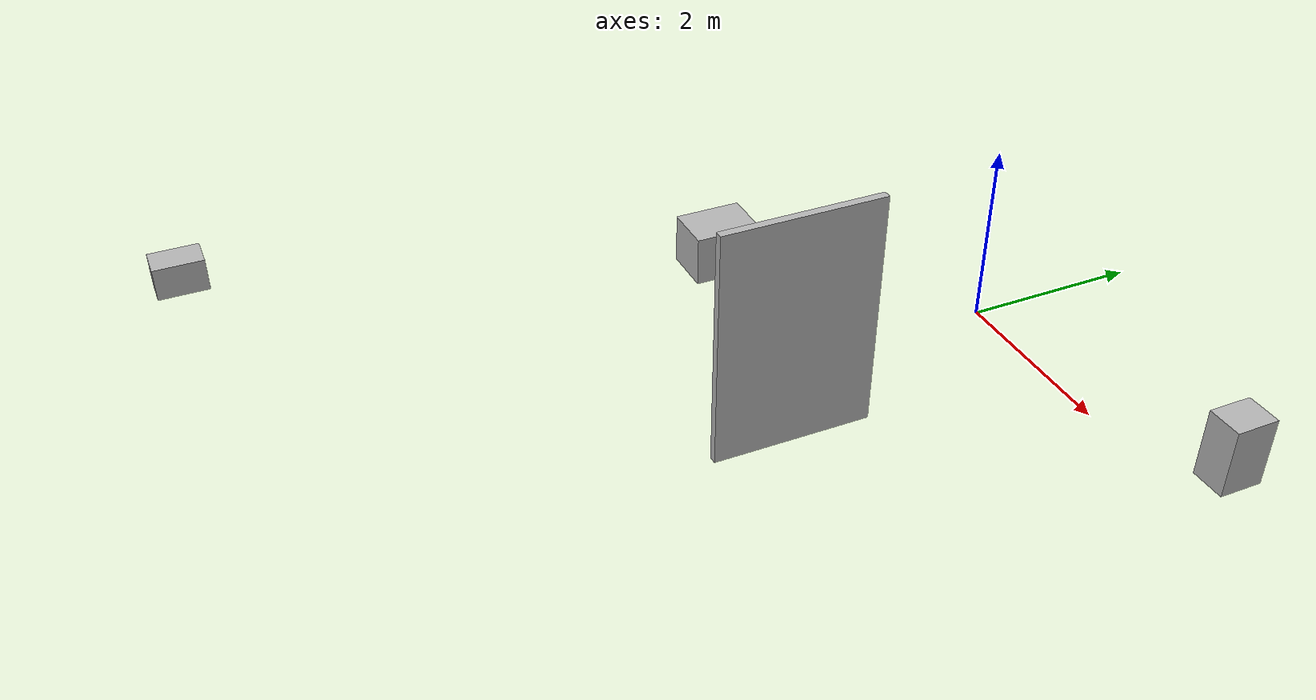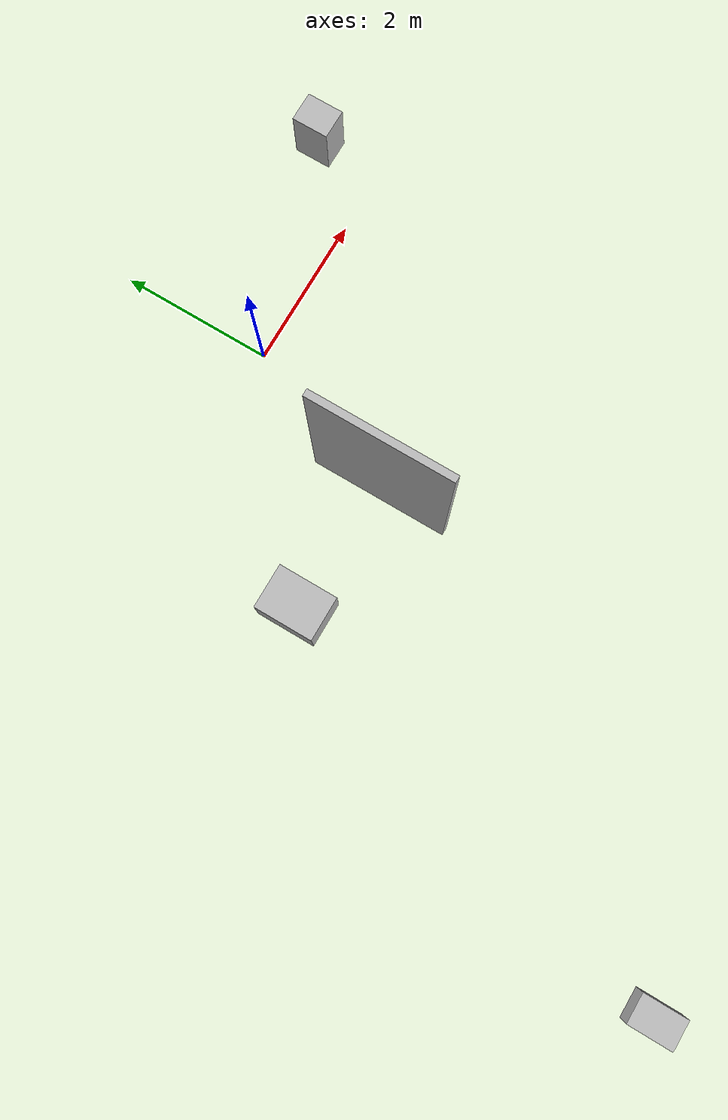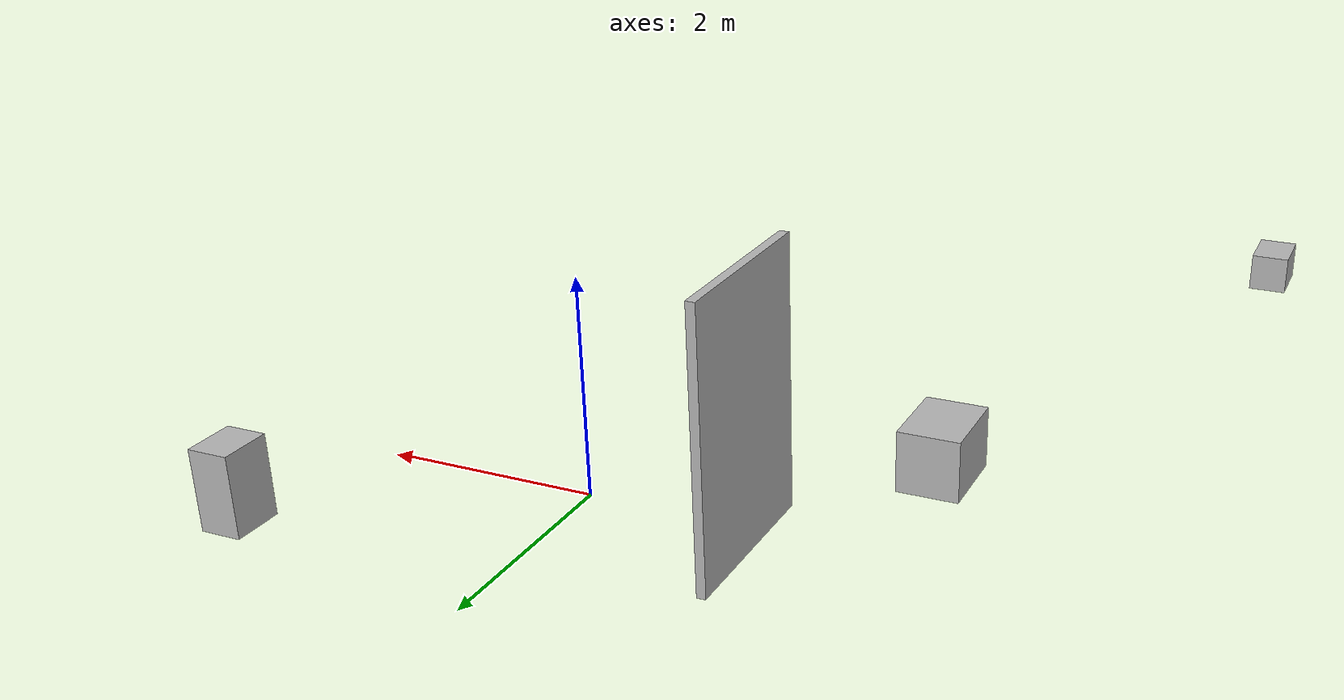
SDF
<sdf version="1.7"> <!-- ✅ 버전 업그레이드 -->
  <world name="animated_box_elements">

    <!-- ✅ 모든 환경 요소 삭제: light, gui 등 -->

    <!-- ✅ 움직이는 박스 모델들만 남김 -->

    <model name="box1">
      <pose>3 1 0 0 0 0</pose>
      <link name="link">
        <collision name="collision">
          <geometry>
            <box>
              <size>0.4 0.5 0.8</size>
            </box>
          </geometry>
        </collision>

        <visual name="visual">
          <geometry>
            <box>
              <size>0.4 0.5 0.8</size>
            </box>
          </geometry>
        </visual>
      </link>
      <plugin name="push_animate_1" filename="libanimated_box_1.so"/>
    </model>

    <model name="box2">
      <pose> -2.5 -2 0 0 0 0</pose>
      <link name="link">
        <collision name="collision">
          <geometry>
            <box>
              <size>0.6 0.8 0.6</size>
            </box>
          </geometry>
        </collision>

        <visual name="visual">
          <geometry>
            <box>
              <size>0.6 0.8 0.6</size>
            </box>
          </geometry>
        </visual>
      </link>
      <plugin name="push_animate_2" filename="libanimated_box_2.so"/>
    </model>

    <model name="box3">
      <pose>-0.5 -2 0 0 0 0</pose>
      <link name="link">
        <collision name="collision">
          <geometry>
            <box>
              <size>0.1 2 3</size>
            </box>
          </geometry>
        </collision>

        <visual name="visual">
          <geometry>
            <box>
              <size>0.1 2 3</size>
            </box>
          </geometry>
        </visual>
      </link>
      <plugin name="push_animate_3" filename="libanimated_box_3.so"/>
    </model>

    <model name="box4">
      <pose>-4.5 -8 0 0 0 0</pose>
      <link name="link">
        <collision name="collision">
          <geometry>
            <box>
              <size>0.4 0.6 0.4</size>
            </box>
          </geometry>
        </collision>

        <visual name="visual">
          <geometry>
            <box>
              <size>0.4 0.6 0.4</size>
            </box>
          </geometry>
        </visual>
      </link>
      <plugin name="push_animate_4" filename="libanimated_box_4.so"/>
    </model>

  </world>
</sdf>
